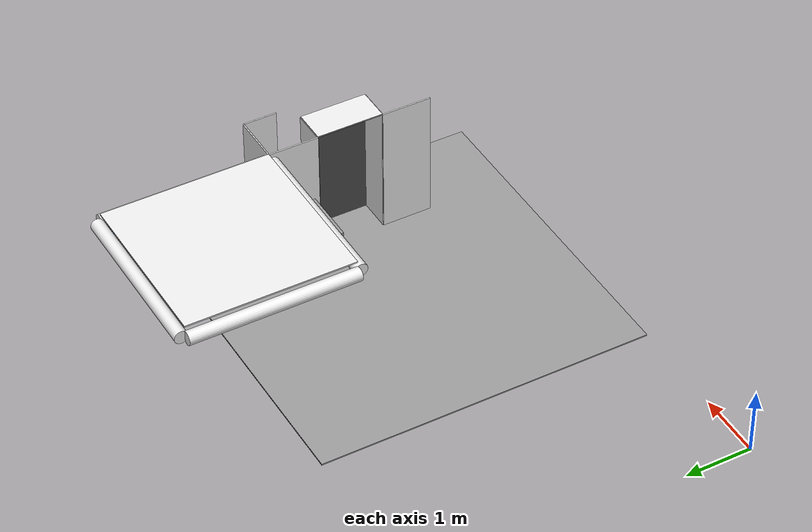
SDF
<sdf version="1.6">
 <world name="default">
  <model name="wall_front_front_left_2_1_0_3">
   <static>1</static>
   <pose>6.25 1.625 1.0 0.0 0.0 -1.57</pose>
   <link name="link">
    <collision name="collision"><geometry><box><size>0.75 0.02 2.0</size></box></geometry></collision>
    <visual name="visual">
     <material>
      <script><name>Gazebo/White</name><uri>file://media/materials/scripts/gazebo.material</uri></script>
     </material>
     <geometry><box><size>0.75 0.02 2.0</size></box></geometry>
    </visual>
   </link>
  </model>
  <model name="wall_front_front_right_2_1_0_3">
   <static>1</static>
   <pose>6.25 3.375 1.0 0.0 0.0 -1.57</pose>
   <link name="link">
    <collision name="collision"><geometry><box><size>0.75 0.02 2.0</size></box></geometry></collision>
    <visual name="visual">
     <material>
      <script><name>Gazebo/White</name><uri>file://media/materials/scripts/gazebo.material</uri></script>
     </material>
     <geometry><box><size>0.75 0.02 2.0</size></box></geometry>
    </visual>
   </link>
  </model>
  <model name="wall_front_front_up_2_1_0_3">
   <static>1</static>
   <pose>6.25 2.5 2.0 0.0 0.0 -1.57</pose>
   <link name="link">
    <collision name="collision"><geometry><box><size>1.0 0.02 0.001</size></box></geometry></collision>
    <visual name="visual">
     <material>
      <script><name>Gazebo/White</name><uri>file://media/materials/scripts/gazebo.material</uri></script>
     </material>
     <geometry><box><size>1.0 0.02 0.001</size></box></geometry>
    </visual>
   </link>
  </model>
  <model name="wall_front_inside_back_2_1_0_3">
   <static>1</static>
   <pose>6.75 2.5 1.0 0.0 0.0 -1.57</pose>
   <link name="link">
    <collision name="collision"><geometry><box><size>1 0.02 2</size></box></geometry></collision>
    <visual name="visual">
     <material>
      <script><name>Gazebo/DarkGrey</name><uri>file://media/materials/scripts/gazebo.material</uri></script>
     </material>
     <geometry><box><size>1 0.02 2</size></box></geometry>
    </visual>
   </link>
  </model>
  <model name="wall_front_inside_left_2_1_0_3">
   <static>1</static>
   <pose>6.5 3.0 1.0 0.0 0.0 0.0</pose>
   <link name="link">
    <collision name="collision"><geometry><box><size>0.5 0.02 2</size></box></geometry></collision>
    <visual name="visual">
     <material>
      <script><name>Gazebo/White</name><uri>file://media/materials/scripts/gazebo.material</uri></script>
     </material>
     <geometry><box><size>0.5 0.02 2</size></box></geometry>
    </visual>
   </link>
  </model>
  <model name="wall_front_inside_right_2_1_0_3">
   <static>1</static>
   <pose>6.5 2.0 1.0 0.0 0.0 0.0</pose>
   <link name="link">
    <collision name="collision"><geometry><box><size>0.5 0.02 2</size></box></geometry></collision>
    <visual name="visual">
     <material>
      <script><name>Gazebo/White</name><uri>file://media/materials/scripts/gazebo.material</uri></script>
     </material>
     <geometry><box><size>0.5 0.02 2</size></box></geometry>
    </visual>
   </link>
  </model>
  <model name="wall_front_inside_top_2_1_0_3">
   <static>1</static>
   <pose>6.5 2.5 2.0 1.57 0.0 -1.57</pose>
   <link name="link">
    <collision name="collision"><geometry><box><size>1 0.02 0.5</size></box></geometry></collision>
    <visual name="visual">
     <material>
      <script><name>Gazebo/White</name><uri>file://media/materials/scripts/gazebo.material</uri></script>
     </material>
     <geometry><box><size>1 0.02 0.5</size></box></geometry>
    </visual>
   </link>
  </model>
  <model name="wall_bottom_2_1_0_3">
   <static>1</static>
   <pose>5.0 2.5 0.0 0.0 0.0 -1.57</pose>
   <link name="link">
    <collision name="collision"><geometry><box><size>5.0 5.0 0.02</size></box></geometry></collision>
    <visual name="visual">
     <material>
      <script><name>Gazebo/Grey</name><uri>file://media/materials/scripts/gazebo.material</uri></script>
     </material>
     <geometry><box><size>5.0 5.0 0.02</size></box></geometry>
    </visual>
   </link>
  </model>
  <model name="wall_top_2_2_0_2">
   <static>1</static>
   <pose>5.0 5.0 2.0 1.57 0.0 0.0</pose>
   <link name="link">
    <collision name="collision"><geometry><box><size>2.5 0.02 2.5</size></box></geometry></collision>
    <visual name="visual">
     <material>
      <script><name>Gazebo/White</name><uri>file://media/materials/scripts/gazebo.material</uri></script>
     </material>
     <geometry><box><size>2.5 0.02 2.5</size></box></geometry>
    </visual>
   </link>
  </model>
  <model name="ceiling_1_2_2_0_2">
   <pose>5.0 4.0 1.7 0.0 0.0 0.0</pose>
   <link name="link_1">
    <visual name="visual">
     <geometry><box><size>0.8 1 0.1</size></box></geometry>
     <material>
      <script><uri>file://media/materials/scripts/gazebo.material</uri><name>Gazebo/Grey</name></script>
     </material>
    </visual>
    <collision name="collision"><geometry><box><size>0.8 1 0.1</size></box></geometry></collision>
   </link>
   <static>1</static>
  </model>
  <model name="white_pipe_left_2_2_0_2">
   <static>1</static>
   <pose>5.0 5.0 1.84 0.0 0.0 0.0</pose>
   <link name="link_0">
    <visual name="visual">
     <pose>-1.3 0 0 1.57 0 0</pose>
     <geometry><cylinder><radius>0.1</radius><length>2.5</length></cylinder></geometry>
     <material>
      <script><uri>file://media/materials/scripts/gazebo.material</uri><name>Gazebo/White</name></script>
     </material>
    </visual>
    <collision name="collision">
     <pose>-1.3 0 0 1.57 0 0</pose>
     <geometry><cylinder><radius>0.1</radius><length>2.5</length></cylinder></geometry>
    </collision>
   </link>
  </model>
  <model name="white_pipe_right_2_2_0_2">
   <static>1</static>
   <pose>5.0 5.0 1.84 0.0 0.0 0.0</pose>
   <link name="link_0">
    <visual name="visual">
     <pose>1.3 0 0 1.57 0 0</pose>
     <geometry><cylinder><radius>0.1</radius><length>2.5</length></cylinder></geometry>
     <material>
      <script><uri>file://media/materials/scripts/gazebo.material</uri><name>Gazebo/White</name></script>
     </material>
    </visual>
    <collision name="collision">
     <pose>1.3 0 0 1.57 0 0</pose>
     <geometry><cylinder><radius>0.1</radius><length>2.5</length></cylinder></geometry>
    </collision>
   </link>
  </model>
  <model name="black_pipe_right_2_2_0_2">
   <static>1</static>
   <pose>5.0 5.0 1.84 0.0 0.0 0.0</pose>
   <link name="link_0">
    <visual name="visual">
     <pose>1.3 0 -0.25 1.57 0 0</pose>
     <geometry><cylinder><radius>0.1</radius><length>2.5</length></cylinder></geometry>
     <material>
      <script><uri>file://media/materials/scripts/gazebo.material</uri><name>Gazebo/Black</name></script>
     </material>
    </visual>
    <collision name="collision">
     <pose>1.3 0 -0.25 1.57 0 0</pose>
     <geometry><cylinder><radius>0.1</radius><length>2.5</length></cylinder></geometry>
    </collision>
   </link>
  </model>
  <model name="grey_pipe_right_2_2_0_2">
   <static>1</static>
   <pose>5.0 5.0 1.84 0.0 0.0 0.0</pose>
   <link name="link_0">
    <visual name="visual">
     <pose>0.7 0 0 1.57 0 0</pose>
     <geometry><cylinder><radius>0.02</radius><length>2.5</length></cylinder></geometry>
     <material>
      <script><uri>file://media/materials/scripts/gazebo.material</uri><name>Gazebo/Grey</name></script>
     </material>
    </visual>
    <collision name="collision">
     <pose>0.7 0 0 1.57 0 0</pose>
     <geometry><cylinder><radius>0.02</radius><length>2.5</length></cylinder></geometry>
    </collision>
   </link>
  </model>
  <model name="red_pipe_right_2_2_0_2">
   <static>1</static>
   <pose>5.0 5.0 1.84 0.0 0.0 0.0</pose>
   <link name="link_0">
    <visual name="visual">
     <pose>0.85 0 0 1.57 0 0</pose>
     <geometry><cylinder><radius>0.02</radius><length>2.5</length></cylinder></geometry>
     <material>
      <script><uri>file://media/materials/scripts/gazebo.material</uri><name>Gazebo/Red</name></script>
     </material>
    </visual>
    <collision name="collision">
     <pose>0.85 0 0 1.57 0 0</pose>
     <geometry><cylinder><radius>0.02</radius><length>2.5</length></cylinder></geometry>
    </collision>
   </link>
  </model>
  <model name="blue_pipe_right_2_2_0_2">
   <static>1</static>
   <pose>5.0 5.0 1.84 0.0 0.0 0.0</pose>
   <link name="link_0">
    <visual name="visual">
     <pose>1 0 0 1.57 0 0</pose>
     <geometry><cylinder><radius>0.02</radius><length>2.5</length></cylinder></geometry>
     <material>
      <script><uri>file://media/materials/scripts/gazebo.material</uri><name>Gazebo/Blue</name></script>
     </material>
    </visual>
    <collision name="collision">
     <pose>1 0 0 1.57 0 0</pose>
     <geometry><cylinder><radius>0.02</radius><length>2.5</length></cylinder></geometry>
    </collision>
   </link>
  </model>
  <model name="white_pipe_left_1_2_2_0_2">
   <static>1</static>
   <pose>5.0 5.0 1.84 0.0 0.0 1.57</pose>
   <link name="link_0">
    <visual name="visual">
     <pose>-1.3 0 0 1.57 0 0</pose>
     <geometry><cylinder><radius>0.1</radius><length>2.5</length></cylinder></geometry>
     <material>
      <script><uri>file://media/materials/scripts/gazebo.material</uri><name>Gazebo/White</name></script>
     </material>
    </visual>
    <collision name="collision">
     <pose>-1.3 0 0 1.57 0 0</pose>
     <geometry><cylinder><radius>0.1</radius><length>2.5</length></cylinder></geometry>
    </collision>
   </link>
  </model>
  <model name="white_pipe_right_1_2_2_0_2">
   <static>1</static>
   <pose>5.0 5.0 1.84 0.0 0.0 1.57</pose>
   <link name="link_0">
    <visual name="visual">
     <pose>1.3 0 0 1.57 0 0</pose>
     <geometry><cylinder><radius>0.1</radius><length>2.5</length></cylinder></geometry>
     <material>
      <script><uri>file://media/materials/scripts/gazebo.material</uri><name>Gazebo/White</name></script>
     </material>
    </visual>
    <collision name="collision">
     <pose>1.3 0 0 1.57 0 0</pose>
     <geometry><cylinder><radius>0.1</radius><length>2.5</length></cylinder></geometry>
    </collision>
   </link>
  </model>
  <model name="wall_right_front_right_3_2_0_1">
   <static>1</static>
   <pose>6.625 3.75 1.0 0.0 0.0 0.0</pose>
   <link name="link">
    <collision name="collision"><geometry><box><size>0.75 0.02 2.0</size></box></geometry></collision>
    <visual name="visual">
     <material>
      <script><name>Gazebo/White</name><uri>file://media/materials/scripts/gazebo.material</uri></script>
     </material>
     <geometry><box><size>0.75 0.02 2.0</size></box></geometry>
    </visual>
   </link>
  </model>
  <model name="wall_right_inside_right_3_2_0_1">
   <static>1</static>
   <pose>7.0 3.5 1.0 0.0 0.0 -1.57</pose>
   <link name="link">
    <collision name="collision"><geometry><box><size>0.5 0.02 2</size></box></geometry></collision>
    <visual name="visual">
     <material>
      <script><name>Gazebo/White</name><uri>file://media/materials/scripts/gazebo.material</uri></script>
     </material>
     <geometry><box><size>0.5 0.02 2</size></box></geometry>
    </visual>
   </link>
  </model>
 </world>
</sdf>
